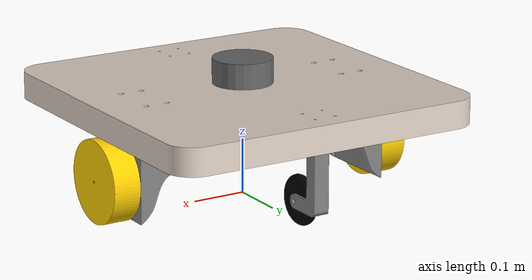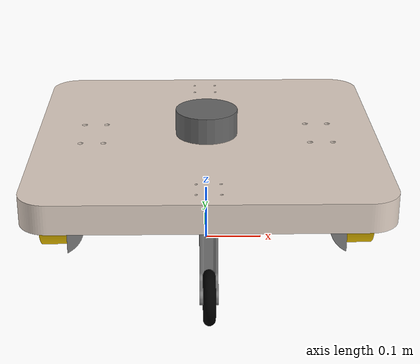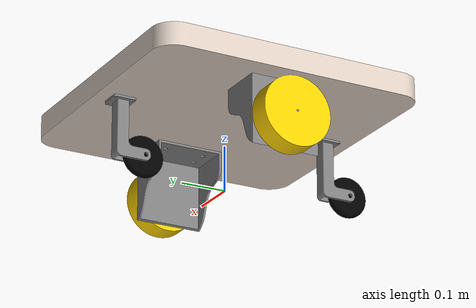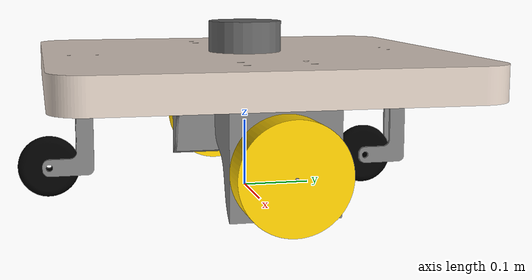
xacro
<?xml version="1.0"?>
<robot name="robot" xmlns:xacro="http://www.ros.org/wiki/xacro">
    <xacro:include filename="$(find vma_description)/urdf/common_properties.xacro"/>
    <xacro:include filename="$(find vma_description)/urdf/robot.gazebo.xacro"/>

    <link name="base_footprint"/>

    <!--Chassis-->
    <joint name="base_joint" type="fixed">
        <parent link="base_footprint"/>
        <child link="base_link"/>
        <origin xyz="0.0273645 -0.0195464 0.16"  rpy="-1.19349e-15 1.75168e-16 3.14159"/>
    </joint>

    <link name="base_link">
        <visual>
            <origin xyz="0.0273645 -0.0195464 0.0204595" rpy="-1.19349e-15 1.75168e-16 3.14159" />
            <geometry>
                <mesh filename="package://vma_description/meshes/chassis.stl"/>
            </geometry>
            <material name="brown"/>
        </visual>

        <collision>
            <origin xyz="0.0273645 -0.0195464 0.0204595" rpy="-1.19349e-15 1.75168e-16 3.14159" />
            <geometry>
                <mesh filename="package://vma_description/meshes/chassis.stl"/>
            </geometry>
        </collision>

        <inertial>
            <origin xyz="0 0 0" />
            <mass value="15.353949" />
            <inertia ixx="0.4594" ixy="0" ixz="0"
                    iyx="0" iyy="0.4588" iyz="-5.030e-16"
                    izx="0" izy="-5.030e-16" izz="0.9118" />
        </inertial>
    </link>

    <!--Support roue droite-->
    <joint name="right_wheel_box_joint" type="fixed">
        <parent link="base_link"/>
        <child link="right_wheel_box_link"/>
        <origin xyz="-0.172636 -0.0195464 -0.0795405" rpy="-1.75168e-16 -1.19349e-15 1.5708" />
        <axis xyz="0 0 1"/>
    </joint>

    <link name="right_wheel_box_link">
        <visual>
            <origin xyz="0 0 0" rpy="0 0 0" />
            <geometry>
                <mesh filename="package://vma_description/meshes/wheel-case.stl"/>
            </geometry>
            <material name="grey"/>
        </visual>

        <collision>
            <origin xyz="0 0 0" rpy="0 0 0" />
            <geometry>
                <mesh filename="package://vma_description/meshes/wheel-case.stl"/>
            </geometry>
        </collision>

        <inertial>
            <origin xyz="0 0 0" />
            <mass value="2.066701" />
            <inertia ixx="1.004e-2" ixy="-263.519e-9" ixz="-1.440e-3"
                    iyx="-263.519e-9" iyy="5.987e-3" iyz="62.787e-9"
                    izx="-1.440e-3" izy="62.787e-9" izz="7.832e-3" />
        </inertial>
    </link>

    <!--Roue droite-->
    <joint name="right_wheel_joint" type="continuous">
        <parent link="base_link"/>
        <child link="right_wheel_link"/>
        <origin xyz="-0.247636 -0.0195464 -0.0895405" rpy="1.57 0 1.5708"/>
        <axis xyz="0 0 1"/>
    </joint>

    <link name="right_wheel_link">
        <visual>
            <origin xyz="0 0 0" rpy="-1.57 0 0" />
            <geometry>
                <mesh filename="package://vma_description/meshes/wheel-part.stl"/>
            </geometry>
            <material name="yellow"/>
        </visual>

        <collision>
            <origin xyz="0 0 0" rpy="-1.57 0 0" />
            <geometry>
                <mesh filename="package://vma_description/meshes/wheel-part.stl"/>
            </geometry>
        </collision>

        <inertial>
            <origin xyz="0 0 0" />
            <mass value="0.97085" />
            <inertia ixx="2.734e-3" ixy="0" ixz="0"
                    iyx="0" iyy="1.569e-3" iyz="0"
                    izx="0" izy="0" izz="1.569e-3" />
        </inertial>
    </link>

    <!--Support roue gauche-->
    <joint name="left_wheel_box_joint" type="fixed">
        <parent link="base_link"/>
        <child link="left_wheel_box_link"/>
        <origin xyz="0.227364 -0.0195464 -0.0795405" rpy="1.75168e-16 1.2837e-15 -1.5708" />
        <axis xyz="0 0 1"/>
    </joint>

    <link name="left_wheel_box_link">
        <visual>
            <origin xyz="0 0 0" rpy="0 0 0" />
            <geometry>
                <mesh filename="package://vma_description/meshes/wheel-case.stl"/>
            </geometry>
            <material name="grey"/>
        </visual>

        <collision>
            <origin xyz="0 0 0" rpy="0 0 0" />
            <geometry>
                <mesh filename="package://vma_description/meshes/wheel-case.stl"/>
            </geometry>
        </collision>

        <inertial>
            <origin xyz="0 0 0" />
            <mass value="2.066701" />
            <inertia ixx="1.004e-2" ixy="-263.519e-9" ixz="1.440e-3"
                    iyx="-263.519e-9" iyy="5.987e-3" iyz="-62.787e-9"
                    izx="1.440e-3" izy="-62.787e-9" izz="7.832e-3" />
        </inertial>
    </link>

    <!--Roue gauche-->
    <joint name="left_wheel_joint" type="continuous">
        <parent link="base_link"/>
        <child link="left_wheel_link"/>
        <origin xyz="0.302364 -0.0195464 -0.0895405" rpy="1.57 0 1.5708"/>
        <axis xyz="0 0 1"/>
    </joint>

    <link name="left_wheel_link">
        <visual>
            <origin xyz="0 0 0" rpy="-1.57 0 0" />
            <geometry>
                <mesh filename="package://vma_description/meshes/wheel-part.stl"/>
            </geometry>
            <material name="yellow"/>
        </visual>

        <collision>
            <origin xyz="0 0 0" rpy="-1.57 0 0" />
            <geometry>
                <mesh filename="package://vma_description/meshes/wheel-part.stl"/>
            </geometry>
        </collision>

        <inertial>
            <origin xyz="0 0 0" />
            <mass value="0.97085" />
            <inertia ixx="2.734e-3" ixy="0" ixz="0"
                    iyx="0" iyy="1.569e-3" iyz="0"
                    izx="0" izy="0" izz="1.569e-3" />
        </inertial>
    </link>

    <!--Roue folle arrière-->
    <joint name="backward_caster_wheel_joint" type="fixed">
        <parent link="base_link"/>
        <child link="backward_caster_wheel_link"/>
        <origin xyz="0.0273645 0.275454 -0.119541" rpy="-0.349066 -1.60156e-16 -1.80643e-14" />
        <axis xyz="0 0 1"/>
    </joint>

    <link name="backward_caster_wheel_link">
        <visual>
            <origin xyz="0 0 0" rpy="0 0 0" />
            <geometry>
                <mesh filename="package://vma_description/meshes/caster-wheel-wheel.stl"/>
            </geometry>
            <material name="black"/>
        </visual>

        <collision>
            <origin xyz="0 0 0" rpy="0 0 0" />
            <geometry>
                <mesh filename="package://vma_description/meshes/caster-wheel-wheel.stl"/>
            </geometry>
        </collision>

        <inertial>
            <origin xyz="0 0 0" />
            <mass value="0.125544" />
            <inertia ixx="118351.14e-9" ixy="0" ixz="0"
                    iyx="0" iyy="62982.274e-9" iyz="0"
                    izx="0" izy="0" izz="62982.274e-9" />
        </inertial>
    </link>

    <!--Pivot arrière-->
    <joint name="backward_pivot_joint" type="fixed">
        <parent link="base_link"/>
        <child link="backward_pivot_link"/>
        <origin xyz="0.0273645 0.222954 -0.00704054" rpy="1.15186e-15 -1.60156e-16 -1.79512e-14" />
        <axis xyz="0 0 1"/>
    </joint>

    <link name="backward_pivot_link">
        <visual>
            <origin xyz="0 0 0" rpy="0 0 0" />
            <geometry>
                <mesh filename="package://vma_description/meshes/caster-wheel-carter.stl"/>
            </geometry>
            <material name="grey"/>
        </visual>

        <collision>
            <origin xyz="0 0 0" rpy="0 0 0" />
            <geometry>
                <mesh filename="package://vma_description/meshes/caster-wheel-carter.stl"/>
            </geometry>
        </collision>

        <inertial>
            <origin xyz="0 0 0" />
            <mass value="0.651262" />
            <inertia ixx="1.810e-3" ixy="-0.087e-9" ixz="-0.237e-9"
                    iyx="-0.087e-9" iyy="1.43e-3" iyz="424120.293e-9"
                    izx="-0.237e-9" izy="424120.293e-9" izz="534589.027e-9" />
        </inertial>
    </link>

    <!--Roue folle avant-->
    <joint name="forward_caster_wheel_joint" type="fixed">
        <parent link="base_link"/>
        <child link="forward_caster_wheel_link"/>
        <origin xyz="0.0273645 -0.209546 -0.119541" rpy="-0.136293 -1.51647e-16 1.66495e-14" />
        <axis xyz="0 0 1"/>
    </joint>

    <link name="forward_caster_wheel_link">
        <visual>
            <origin xyz="0 0 0" rpy="0 0 0" />
            <geometry>
                <mesh filename="package://vma_description/meshes/caster-wheel-wheel.stl"/>
            </geometry>
            <material name="black"/>
        </visual>

        <collision>
            <origin xyz="0 0 0" rpy="0 0 0" />
            <geometry>
                <mesh filename="package://vma_description/meshes/caster-wheel-wheel.stl"/>
            </geometry>
        </collision>

        <inertial>
            <origin xyz="0 0 0" />
            <mass value="0.125544" />
            <inertia ixx="118351.14e-9" ixy="0" ixz="0"
                    iyx="0" iyy="62982.274e-9" iyz="0"
                    izx="0" izy="0" izz="62982.274e-9" />
        </inertial>
    </link>

    <!--Pivot avant-->
    <joint name="forward_pivot_joint" type="fixed">
        <parent link="base_link"/>
        <child link="forward_pivot_link"/>
        <origin xyz="0.0273645 -0.262046 -0.00704054" rpy="1.15186e-15 -1.51647e-16 1.67626e-14" />
        <axis xyz="0 0 1"/>
    </joint>

    <link name="forward_pivot_link">
        <visual>
            <origin xyz="0 0 0" rpy="0 0 0" />
            <geometry>
                <mesh filename="package://vma_description/meshes/caster-wheel-carter.stl"/>
            </geometry>
            <material name="grey"/>
        </visual>

        <collision>
            <origin xyz="0 0 0" rpy="0 0 0" />
            <geometry>
                <mesh filename="package://vma_description/meshes/caster-wheel-carter.stl"/>
            </geometry>
        </collision>

        <inertial>
            <origin xyz="0 0 0" />
            <mass value="0.525718" />
            <inertia ixx="1.179e-3" ixy="-0.039e-9" ixz="-0.289e-9"
                    iyx="-0.039e-9" iyy="1.091e-3" iyz="168683.619e-9"
                    izx="-0.289e-9" izy="168683.619e-9" izz="237320.758e-9" />
        </inertial>
    </link>

    <!--IMU-->
    <joint name="imu_joint" type="fixed">
        <parent link="base_link"/>
        <child link="imu_link"/>
        <origin xyz="0.0273645 -0.0195464 0.05" rpy="-1.19349e-15 1.75168e-16 3.14159"/>
    </joint>

    <link name="imu_link"/>

    <!--LIDAR-->
    <joint name="scan_joint" type="fixed">
        <parent link="base_link"/>
        <child link="lidar_scan"/>
        <origin xyz="0.0273645 -0.0195464 0.05" rpy="-1.19349e-15 1.75168e-16 3.14159"/>
    </joint>

    <link name="lidar_scan">
        <visual>
            <origin xyz="0 0 0.0" rpy="0 0 0"/>
            <geometry>
                <cylinder length="0.0827" radius="0.0545"/>
            </geometry>
            <material name="light_black"/>
        </visual>

        <collision>
            <origin xyz="0 0 0" rpy="0 0 0"/>
            <geometry>
                <cylinder length="0.0827" radius="0.0545"/>
            </geometry>
        </collision>

        <inertial>
            <mass value="0.840" />
            <origin xyz="0 0 0" />
            <inertia ixx="0.001" ixy="0.0" ixz="0.0"
                    iyy="0.001" iyz="0.0"
                    izz="0.001" />
        </inertial>
    </link>

</robot>

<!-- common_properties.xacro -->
<robot name="xacro_properties" xmlns:xacro="http://ros.org/wiki/xacro">

  <!-- Init colour -->
  <material name="black">
      <color rgba="0.0 0.0 0.0 1.0"/>
  </material>

  <material name="dark">
    <color rgba="0.3 0.3 0.3 1.0"/>
  </material>
  <material name="light_black">
    <color rgba="0.4 0.4 0.4 1.0"/>
  </material>

  <material name="blue">
    <color rgba="0.0 0.0 0.8 1.0"/>
  </material>

  <material name="green">
    <color rgba="0.0 0.8 0.0 1.0"/>
  </material>

  <material name="grey">
    <color rgba="0.5 0.5 0.5 1.0"/>
  </material>

  <material name="yellow">
    <color rgba="${255/255} ${209/255} ${0/255} 1.0"/>
  </material>

  <material name="brown">
    <color rgba="${222/255} ${207/255} ${195/255} 1.0"/>
  </material>

  <material name="red">
    <color rgba="0.8 0.0 0.0 1.0"/>
  </material>

  <material name="white">
    <color rgba="1.0 1.0 1.0 1.0"/>
  </material>

</robot>
